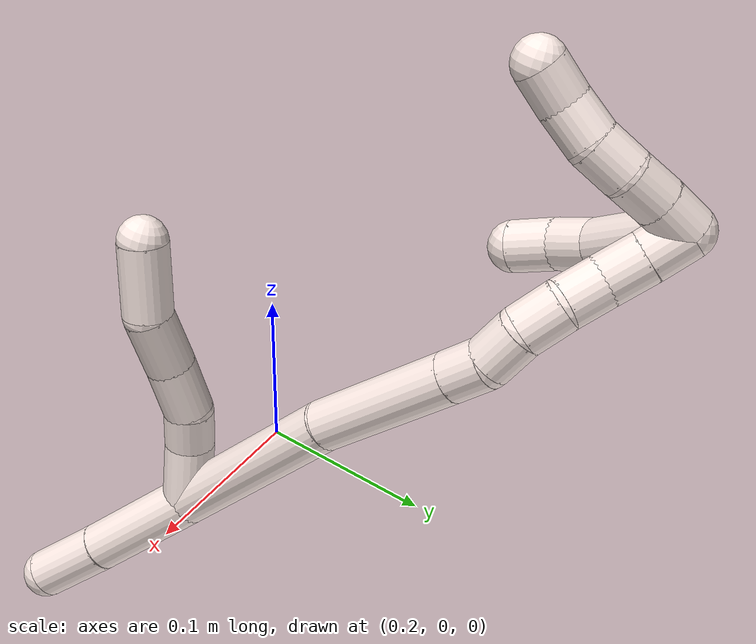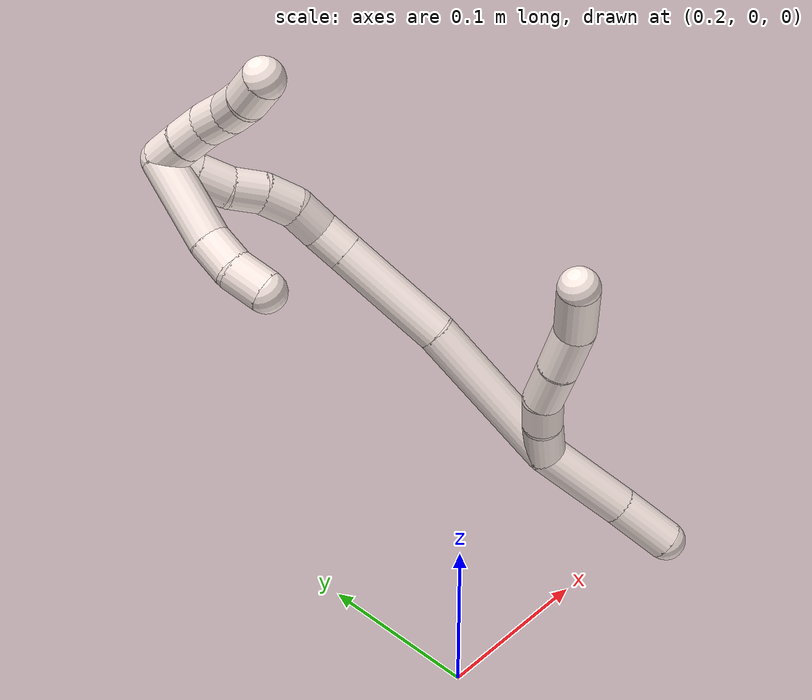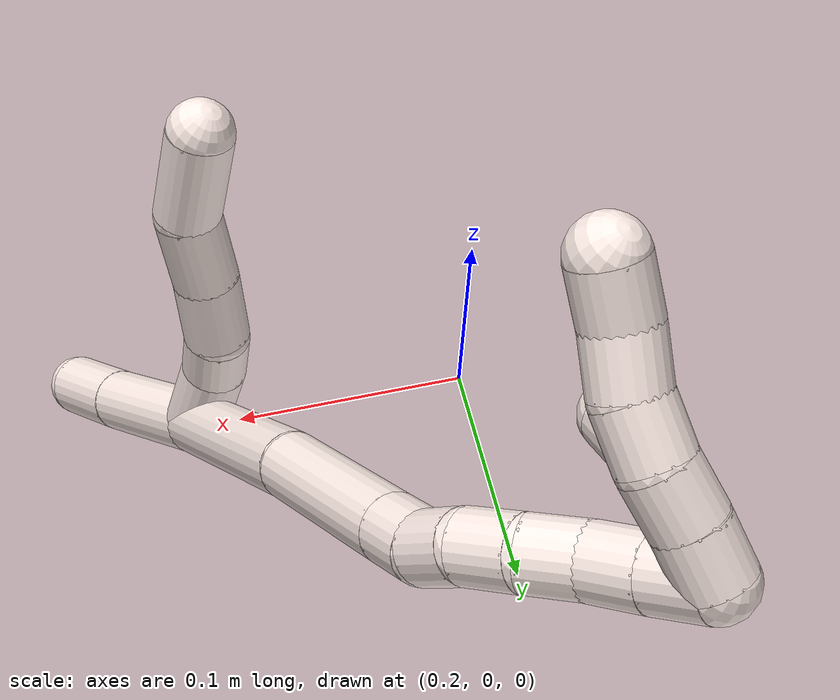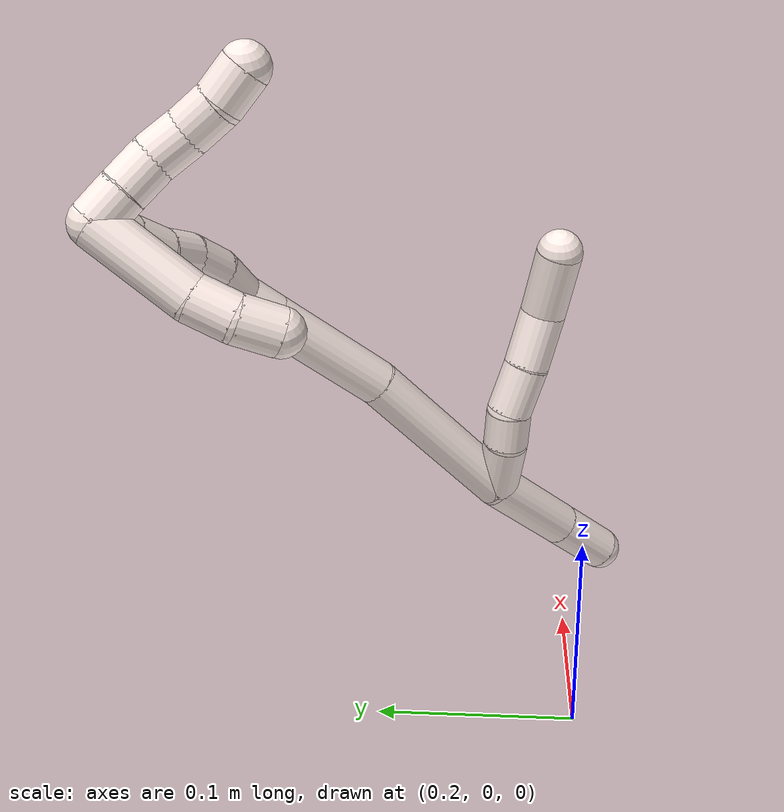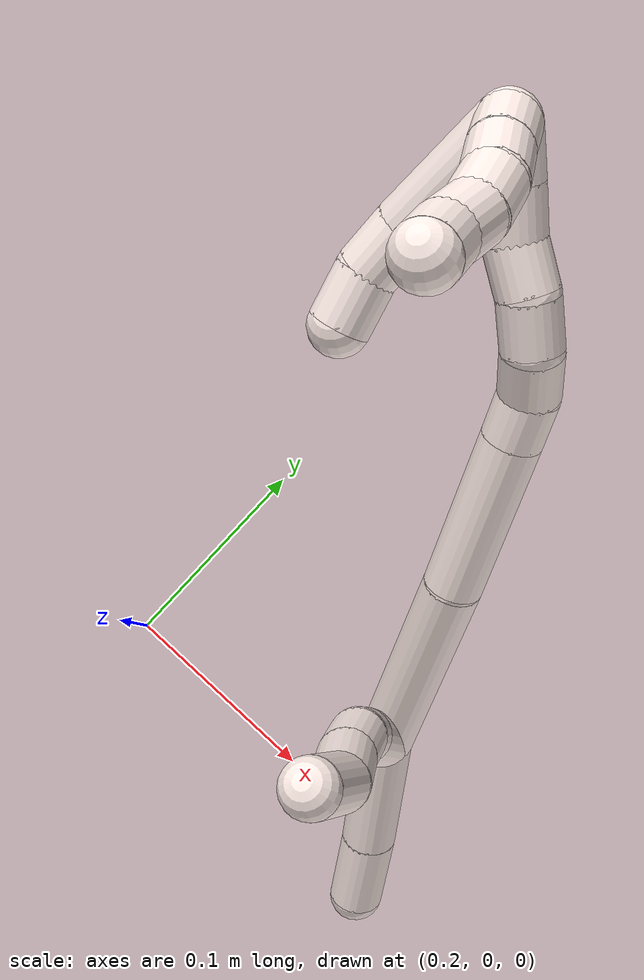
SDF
<sdf version="1.7">
 <world name="default">
  <model name="11">
   <static>0</static>
   <link name="11">
    <collision name="collision-cylinder-e_1_2_8">
     <pose>0.000746 -0.002992 0.016128 0.183396 0.045463 0.004181</pose>
     <geometry><cylinder><radius>0.0125</radius><length>0.032841</length></cylinder></geometry>
     <surface>
      <friction><ode><mu>1.16</mu><mu2>1.16</mu2><slip1>0</slip1><slip2>0</slip2></ode></friction>
      <contact><ode><kp>1e+06</kp><kd>1</kd><max_vel>0</max_vel><min_depth>0.001</min_depth></ode></contact>
     </surface>
    </collision>
    <visual name="visual-cylinder-e_1_2_8">
     <pose>0.000746 -0.002992 0.016128 0.183396 0.045463 0.004181</pose>
     <geometry><cylinder><radius>0.0125</radius><length>0.032841</length></cylinder></geometry>
     <material><ambient>1 0.933333 0.909804 1</ambient></material>
    </visual>
    <collision name="collision-cylinder-e_2_8_9">
     <pose>0.003849 -0.007566 0.042144 0.158753 0.23118 0.018471</pose>
     <geometry><cylinder><radius>0.0125</radius><length>0.020573</length></cylinder></geometry>
     <surface>
      <friction><ode><mu>1.16</mu><mu2>1.16</mu2><slip1>0</slip1><slip2>0</slip2></ode></friction>
      <contact><ode><kp>1e+06</kp><kd>1</kd><max_vel>0</max_vel><min_depth>0.001</min_depth></ode></contact>
     </surface>
    </collision>
    <visual name="visual-cylinder-e_2_8_9">
     <pose>0.003849 -0.007566 0.042144 0.158753 0.23118 0.018471</pose>
     <geometry><cylinder><radius>0.0125</radius><length>0.020573</length></cylinder></geometry>
     <material><ambient>1 0.933333 0.909804 1</ambient></material>
    </visual>
    <collision name="collision-cylinder-e_3_9_10">
     <pose>0.010691 -0.014986 0.063966 0.454858 0.325515 0.075971</pose>
     <geometry><cylinder><radius>0.0125</radius><length>0.028044</length></cylinder></geometry>
     <surface>
      <friction><ode><mu>1.16</mu><mu2>1.16</mu2><slip1>0</slip1><slip2>0</slip2></ode></friction>
      <contact><ode><kp>1e+06</kp><kd>1</kd><max_vel>0</max_vel><min_depth>0.001</min_depth></ode></contact>
     </surface>
    </collision>
    <visual name="visual-cylinder-e_3_9_10">
     <pose>0.010691 -0.014986 0.063966 0.454858 0.325515 0.075971</pose>
     <geometry><cylinder><radius>0.0125</radius><length>0.028044</length></cylinder></geometry>
     <material><ambient>1 0.933333 0.909804 1</ambient></material>
    </visual>
    <collision name="collision-cylinder-e_4_10_11">
     <pose>0.021357 -0.026813 0.088904 0.431683 0.407602 0.090566</pose>
     <geometry><cylinder><radius>0.0125</radius><length>0.03119</length></cylinder></geometry>
     <surface>
      <friction><ode><mu>1.16</mu><mu2>1.16</mu2><slip1>0</slip1><slip2>0</slip2></ode></friction>
      <contact><ode><kp>1e+06</kp><kd>1</kd><max_vel>0</max_vel><min_depth>0.001</min_depth></ode></contact>
     </surface>
    </collision>
    <visual name="visual-cylinder-e_4_10_11">
     <pose>0.021357 -0.026813 0.088904 0.431683 0.407602 0.090566</pose>
     <geometry><cylinder><radius>0.0125</radius><length>0.03119</length></cylinder></geometry>
     <material><ambient>1 0.933333 0.909804 1</ambient></material>
    </visual>
    <collision name="collision-cylinder-e_5_11_6">
     <pose>0.029481 -0.037563 0.119863 0.259135 0.104167 0.013585</pose>
     <geometry><cylinder><radius>0.0125</radius><length>0.037352</length></cylinder></geometry>
     <surface>
      <friction><ode><mu>1.16</mu><mu2>1.16</mu2><slip1>0</slip1><slip2>0</slip2></ode></friction>
      <contact><ode><kp>1e+06</kp><kd>1</kd><max_vel>0</max_vel><min_depth>0.001</min_depth></ode></contact>
     </surface>
    </collision>
    <visual name="visual-cylinder-e_5_11_6">
     <pose>0.029481 -0.037563 0.119863 0.259135 0.104167 0.013585</pose>
     <geometry><cylinder><radius>0.0125</radius><length>0.037352</length></cylinder></geometry>
     <material><ambient>1 0.933333 0.909804 1</ambient></material>
    </visual>
    <collision name="collision-cylinder-e_1_2_12">
     <pose>0.0019 -0.019315 -0.023162 2.44653 0.062913 0.173303</pose>
     <geometry><cylinder><radius>0.0125</radius><length>0.060436</length></cylinder></geometry>
     <surface>
      <friction><ode><mu>1.16</mu><mu2>1.16</mu2><slip1>0</slip1><slip2>0</slip2></ode></friction>
      <contact><ode><kp>1e+06</kp><kd>1</kd><max_vel>0</max_vel><min_depth>0.001</min_depth></ode></contact>
     </surface>
    </collision>
    <visual name="visual-cylinder-e_1_2_12">
     <pose>0.0019 -0.019315 -0.023162 2.44653 0.062913 0.173303</pose>
     <geometry><cylinder><radius>0.0125</radius><length>0.060436</length></cylinder></geometry>
     <material><ambient>1 0.933333 0.909804 1</ambient></material>
    </visual>
    <collision name="collision-cylinder-e_2_12_5">
     <pose>0.004363 -0.051613 -0.061238 2.42526 0.028464 0.076013</pose>
     <geometry><cylinder><radius>0.0125</radius><length>0.039564</length></cylinder></geometry>
     <surface>
      <friction><ode><mu>1.16</mu><mu2>1.16</mu2><slip1>0</slip1><slip2>0</slip2></ode></friction>
      <contact><ode><kp>1e+06</kp><kd>1</kd><max_vel>0</max_vel><min_depth>0.001</min_depth></ode></contact>
     </surface>
    </collision>
    <visual name="visual-cylinder-e_2_12_5">
     <pose>0.004363 -0.051613 -0.061238 2.42526 0.028464 0.076013</pose>
     <geometry><cylinder><radius>0.0125</radius><length>0.039564</length></cylinder></geometry>
     <material><ambient>1 0.933333 0.909804 1</ambient></material>
    </visual>
    <collision name="collision-cylinder-e_1_2_13">
     <pose>0.007439 0.0309 0.039749 -0.6608 0.146695 -0.050392</pose>
     <geometry><cylinder><radius>0.0125</radius><length>0.101787</length></cylinder></geometry>
     <surface>
      <friction><ode><mu>1.16</mu><mu2>1.16</mu2><slip1>0</slip1><slip2>0</slip2></ode></friction>
      <contact><ode><kp>1e+06</kp><kd>1</kd><max_vel>0</max_vel><min_depth>0.001</min_depth></ode></contact>
     </surface>
    </collision>
    <visual name="visual-cylinder-e_1_2_13">
     <pose>0.007439 0.0309 0.039749 -0.6608 0.146695 -0.050392</pose>
     <geometry><cylinder><radius>0.0125</radius><length>0.101787</length></cylinder></geometry>
     <material><ambient>1 0.933333 0.909804 1</ambient></material>
    </visual>
    <collision name="collision-cylinder-e_2_13_14">
     <pose>0.017875 0.087395 0.105349 -0.780406 0.0822 -0.033824</pose>
     <geometry><cylinder><radius>0.0125</radius><length>0.073002</length></cylinder></geometry>
     <surface>
      <friction><ode><mu>1.16</mu><mu2>1.16</mu2><slip1>0</slip1><slip2>0</slip2></ode></friction>
      <contact><ode><kp>1e+06</kp><kd>1</kd><max_vel>0</max_vel><min_depth>0.001</min_depth></ode></contact>
     </surface>
    </collision>
    <visual name="visual-cylinder-e_2_13_14">
     <pose>0.017875 0.087395 0.105349 -0.780406 0.0822 -0.033824</pose>
     <geometry><cylinder><radius>0.0125</radius><length>0.073002</length></cylinder></geometry>
     <material><ambient>1 0.933333 0.909804 1</ambient></material>
    </visual>
    <collision name="collision-cylinder-e_3_14_15">
     <pose>0.021644 0.12004 0.138402 -0.774794 0.07642 -0.031193</pose>
     <geometry><cylinder><radius>0.0125</radius><length>0.020217</length></cylinder></geometry>
     <surface>
      <friction><ode><mu>1.16</mu><mu2>1.16</mu2><slip1>0</slip1><slip2>0</slip2></ode></friction>
      <contact><ode><kp>1e+06</kp><kd>1</kd><max_vel>0</max_vel><min_depth>0.001</min_depth></ode></contact>
     </surface>
    </collision>
    <visual name="visual-cylinder-e_3_14_15">
     <pose>0.021644 0.12004 0.138402 -0.774794 0.07642 -0.031193</pose>
     <geometry><cylinder><radius>0.0125</radius><length>0.020217</length></cylinder></geometry>
     <material><ambient>1 0.933333 0.909804 1</ambient></material>
    </visual>
    <collision name="collision-cylinder-e_4_15_16">
     <pose>0.021753 0.131773 0.15509 -0.45847 -0.062566 0.014603</pose>
     <geometry><cylinder><radius>0.0125</radius><length>0.021198</length></cylinder></geometry>
     <surface>
      <friction><ode><mu>1.16</mu><mu2>1.16</mu2><slip1>0</slip1><slip2>0</slip2></ode></friction>
      <contact><ode><kp>1e+06</kp><kd>1</kd><max_vel>0</max_vel><min_depth>0.001</min_depth></ode></contact>
     </surface>
    </collision>
    <visual name="visual-cylinder-e_4_15_16">
     <pose>0.021753 0.131773 0.15509 -0.45847 -0.062566 0.014603</pose>
     <geometry><cylinder><radius>0.0125</radius><length>0.021198</length></cylinder></geometry>
     <material><ambient>1 0.933333 0.909804 1</ambient></material>
    </visual>
    <collision name="collision-cylinder-e_5_16_17">
     <pose>0.017735 0.142606 0.172822 -0.640943 -0.315274 0.105421</pose>
     <geometry><cylinder><radius>0.0125</radius><length>0.021643</length></cylinder></geometry>
     <surface>
      <friction><ode><mu>1.16</mu><mu2>1.16</mu2><slip1>0</slip1><slip2>0</slip2></ode></friction>
      <contact><ode><kp>1e+06</kp><kd>1</kd><max_vel>0</max_vel><min_depth>0.001</min_depth></ode></contact>
     </surface>
    </collision>
    <visual name="visual-cylinder-e_5_16_17">
     <pose>0.017735 0.142606 0.172822 -0.640943 -0.315274 0.105421</pose>
     <geometry><cylinder><radius>0.0125</radius><length>0.021643</length></cylinder></geometry>
     <material><ambient>1 0.933333 0.909804 1</ambient></material>
    </visual>
    <collision name="collision-cylinder-e_6_17_18">
     <pose>0.008976 0.154487 0.187469 -0.730068 -0.561547 0.219538</pose>
     <geometry><cylinder><radius>0.0125</radius><length>0.020296</length></cylinder></geometry>
     <surface>
      <friction><ode><mu>1.16</mu><mu2>1.16</mu2><slip1>0</slip1><slip2>0</slip2></ode></friction>
      <contact><ode><kp>1e+06</kp><kd>1</kd><max_vel>0</max_vel><min_depth>0.001</min_depth></ode></contact>
     </surface>
    </collision>
    <visual name="visual-cylinder-e_6_17_18">
     <pose>0.008976 0.154487 0.187469 -0.730068 -0.561547 0.219538</pose>
     <geometry><cylinder><radius>0.0125</radius><length>0.020296</length></cylinder></geometry>
     <material><ambient>1 0.933333 0.909804 1</ambient></material>
    </visual>
    <collision name="collision-cylinder-e_7_18_19">
     <pose>0.000278 0.166804 0.201616 -0.704756 -0.313213 0.115997</pose>
     <geometry><cylinder><radius>0.0125</radius><length>0.02138</length></cylinder></geometry>
     <surface>
      <friction><ode><mu>1.16</mu><mu2>1.16</mu2><slip1>0</slip1><slip2>0</slip2></ode></friction>
      <contact><ode><kp>1e+06</kp><kd>1</kd><max_vel>0</max_vel><min_depth>0.001</min_depth></ode></contact>
     </surface>
    </collision>
    <visual name="visual-cylinder-e_7_18_19">
     <pose>0.000278 0.166804 0.201616 -0.704756 -0.313213 0.115997</pose>
     <geometry><cylinder><radius>0.0125</radius><length>0.02138</length></cylinder></geometry>
     <material><ambient>1 0.933333 0.909804 1</ambient></material>
    </visual>
    <collision name="collision-cylinder-e_8_19_1">
     <pose>-0.006116 0.179391 0.21706 -0.66205 -0.307632 0.106465</pose>
     <geometry><cylinder><radius>0.0125</radius><length>0.020477</length></cylinder></geometry>
     <surface>
      <friction><ode><mu>1.16</mu><mu2>1.16</mu2><slip1>0</slip1><slip2>0</slip2></ode></friction>
      <contact><ode><kp>1e+06</kp><kd>1</kd><max_vel>0</max_vel><min_depth>0.001</min_depth></ode></contact>
     </surface>
    </collision>
    <visual name="visual-cylinder-e_8_19_1">
     <pose>-0.006116 0.179391 0.21706 -0.66205 -0.307632 0.106465</pose>
     <geometry><cylinder><radius>0.0125</radius><length>0.020477</length></cylinder></geometry>
     <material><ambient>1 0.933333 0.909804 1</ambient></material>
    </visual>
    <collision name="collision-cylinder-e_1_1_20">
     <pose>-0.005195 0.177672 0.229684 1.00251 0.413833 0.229039</pose>
     <geometry><cylinder><radius>0.0125</radius><length>0.02</length></cylinder></geometry>
     <surface>
      <friction><ode><mu>1.16</mu><mu2>1.16</mu2><slip1>0</slip1><slip2>0</slip2></ode></friction>
      <contact><ode><kp>1e+06</kp><kd>1</kd><max_vel>0</max_vel><min_depth>0.001</min_depth></ode></contact>
     </surface>
    </collision>
    <visual name="visual-cylinder-e_1_1_20">
     <pose>-0.005195 0.177672 0.229684 1.00251 0.413833 0.229039</pose>
     <geometry><cylinder><radius>0.0125</radius><length>0.02</length></cylinder></geometry>
     <material><ambient>1 0.933333 0.909804 1</ambient></material>
    </visual>
    <collision name="collision-cylinder-e_2_20_21">
     <pose>0.00323 0.162167 0.239077 1.05014 0.455967 0.267222</pose>
     <geometry><cylinder><radius>0.0125</radius><length>0.02</length></cylinder></geometry>
     <surface>
      <friction><ode><mu>1.16</mu><mu2>1.16</mu2><slip1>0</slip1><slip2>0</slip2></ode></friction>
      <contact><ode><kp>1e+06</kp><kd>1</kd><max_vel>0</max_vel><min_depth>0.001</min_depth></ode></contact>
     </surface>
    </collision>
    <visual name="visual-cylinder-e_2_20_21">
     <pose>0.00323 0.162167 0.239077 1.05014 0.455967 0.267222</pose>
     <geometry><cylinder><radius>0.0125</radius><length>0.02</length></cylinder></geometry>
     <material><ambient>1 0.933333 0.909804 1</ambient></material>
    </visual>
    <collision name="collision-cylinder-e_3_21_22">
     <pose>0.010101 0.145724 0.247904 1.10405 0.249392 0.154095</pose>
     <geometry><cylinder><radius>0.0125</radius><length>0.02</length></cylinder></geometry>
     <surface>
      <friction><ode><mu>1.16</mu><mu2>1.16</mu2><slip1>0</slip1><slip2>0</slip2></ode></friction>
      <contact><ode><kp>1e+06</kp><kd>1</kd><max_vel>0</max_vel><min_depth>0.001</min_depth></ode></contact>
     </surface>
    </collision>
    <visual name="visual-cylinder-e_3_21_22">
     <pose>0.010101 0.145724 0.247904 1.10405 0.249392 0.154095</pose>
     <geometry><cylinder><radius>0.0125</radius><length>0.02</length></cylinder></geometry>
     <material><ambient>1 0.933333 0.909804 1</ambient></material>
    </visual>
    <collision name="collision-cylinder-e_4_22_23">
     <pose>0.013223 0.12894 0.258051 0.952294 0.065433 0.033754</pose>
     <geometry><cylinder><radius>0.0125</radius><length>0.02</length></cylinder></geometry>
     <surface>
      <friction><ode><mu>1.16</mu><mu2>1.16</mu2><slip1>0</slip1><slip2>0</slip2></ode></friction>
      <contact><ode><kp>1e+06</kp><kd>1</kd><max_vel>0</max_vel><min_depth>0.001</min_depth></ode></contact>
     </surface>
    </collision>
    <visual name="visual-cylinder-e_4_22_23">
     <pose>0.013223 0.12894 0.258051 0.952294 0.065433 0.033754</pose>
     <geometry><cylinder><radius>0.0125</radius><length>0.02</length></cylinder></geometry>
     <material><ambient>1 0.933333 0.909804 1</ambient></material>
    </visual>
    <collision name="collision-cylinder-e_5_23_4">
     <pose>0.016439 0.113733 0.270421 0.821455 0.25911 0.113355</pose>
     <geometry><cylinder><radius>0.0125</radius><length>0.02</length></cylinder></geometry>
     <surface>
      <friction><ode><mu>1.16</mu><mu2>1.16</mu2><slip1>0</slip1><slip2>0</slip2></ode></friction>
      <contact><ode><kp>1e+06</kp><kd>1</kd><max_vel>0</max_vel><min_depth>0.001</min_depth></ode></contact>
     </surface>
    </collision>
    <visual name="visual-cylinder-e_5_23_4">
     <pose>0.016439 0.113733 0.270421 0.821455 0.25911 0.113355</pose>
     <geometry><cylinder><radius>0.0125</radius><length>0.02</length></cylinder></geometry>
     <material><ambient>1 0.933333 0.909804 1</ambient></material>
    </visual>
    <collision name="collision-cylinder-e_1_1_24">
     <pose>-0.02232 0.166096 0.209873 2.22786 -0.493414 -0.946931</pose>
     <geometry><cylinder><radius>0.0125</radius><length>0.055335</length></cylinder></geometry>
     <surface>
      <friction><ode><mu>1.16</mu><mu2>1.16</mu2><slip1>0</slip1><slip2>0</slip2></ode></friction>
      <contact><ode><kp>1e+06</kp><kd>1</kd><max_vel>0</max_vel><min_depth>0.001</min_depth></ode></contact>
     </surface>
    </collision>
    <visual name="visual-cylinder-e_1_1_24">
     <pose>-0.02232 0.166096 0.209873 2.22786 -0.493414 -0.946931</pose>
     <geometry><cylinder><radius>0.0125</radius><length>0.055335</length></cylinder></geometry>
     <material><ambient>1 0.933333 0.909804 1</ambient></material>
    </visual>
    <collision name="collision-cylinder-e_2_24_25">
     <pose>-0.03941 0.137621 0.190282 2.04453 -0.3686 -0.592176</pose>
     <geometry><cylinder><radius>0.0125</radius><length>0.022121</length></cylinder></geometry>
     <surface>
      <friction><ode><mu>1.16</mu><mu2>1.16</mu2><slip1>0</slip1><slip2>0</slip2></ode></friction>
      <contact><ode><kp>1e+06</kp><kd>1</kd><max_vel>0</max_vel><min_depth>0.001</min_depth></ode></contact>
     </surface>
    </collision>
    <visual name="visual-cylinder-e_2_24_25">
     <pose>-0.03941 0.137621 0.190282 2.04453 -0.3686 -0.592176</pose>
     <geometry><cylinder><radius>0.0125</radius><length>0.022121</length></cylinder></geometry>
     <material><ambient>1 0.933333 0.909804 1</ambient></material>
    </visual>
    <collision name="collision-cylinder-e_3_25_3">
     <pose>-0.044636 0.118453 0.180496 2.04129 -0.11029 -0.179525</pose>
     <geometry><cylinder><radius>0.0125</radius><length>0.022544</length></cylinder></geometry>
     <surface>
      <friction><ode><mu>1.16</mu><mu2>1.16</mu2><slip1>0</slip1><slip2>0</slip2></ode></friction>
      <contact><ode><kp>1e+06</kp><kd>1</kd><max_vel>0</max_vel><min_depth>0.001</min_depth></ode></contact>
     </surface>
    </collision>
    <visual name="visual-cylinder-e_3_25_3">
     <pose>-0.044636 0.118453 0.180496 2.04129 -0.11029 -0.179525</pose>
     <geometry><cylinder><radius>0.0125</radius><length>0.022544</length></cylinder></geometry>
     <material><ambient>1 0.933333 0.909804 1</ambient></material>
    </visual>
    <collision name="collision-sphere-3">
     <pose>-0.045876 0.108467 0.175417 0 -0 0</pose>
     <geometry><sphere><radius>0.0125</radius></sphere></geometry>
     <surface>
      <friction><ode><mu>1.16</mu><mu2>1.16</mu2><slip1>0</slip1><slip2>0</slip2></ode></friction>
      <contact><ode><kp>1e+06</kp><kd>1</kd><max_vel>0</max_vel><min_depth>0.001</min_depth></ode></contact>
     </surface>
    </collision>
    <visual name="visual-sphere-3">
     <pose>-0.045876 0.108467 0.175417 0 -0 0</pose>
     <geometry><sphere><radius>0.0125</radius></sphere></geometry>
     <material><ambient>1 0.933333 0.909804 1</ambient></material>
    </visual>
    <collision name="collision-sphere-25">
     <pose>-0.043395 0.128439 0.185575 0 -0 0</pose>
     <geometry><sphere><radius>0.0125</radius></sphere></geometry>
     <surface>
      <friction><ode><mu>1.16</mu><mu2>1.16</mu2><slip1>0</slip1><slip2>0</slip2></ode></friction>
      <contact><ode><kp>1e+06</kp><kd>1</kd><max_vel>0</max_vel><min_depth>0.001</min_depth></ode></contact>
     </surface>
    </collision>
    <visual name="visual-sphere-25">
     <pose>-0.043395 0.128439 0.185575 0 -0 0</pose>
     <geometry><sphere><radius>0.0125</radius></sphere></geometry>
     <material><ambient>1 0.933333 0.909804 1</ambient></material>
    </visual>
    <collision name="collision-sphere-24">
     <pose>-0.035425 0.146802 0.194989 0 -0 0</pose>
     <geometry><sphere><radius>0.0125</radius></sphere></geometry>
     <surface>
      <friction><ode><mu>1.16</mu><mu2>1.16</mu2><slip1>0</slip1><slip2>0</slip2></ode></friction>
      <contact><ode><kp>1e+06</kp><kd>1</kd><max_vel>0</max_vel><min_depth>0.001</min_depth></ode></contact>
     </surface>
    </collision>
    <visual name="visual-sphere-24">
     <pose>-0.035425 0.146802 0.194989 0 -0 0</pose>
     <geometry><sphere><radius>0.0125</radius></sphere></geometry>
     <material><ambient>1 0.933333 0.909804 1</ambient></material>
    </visual>
    <collision name="collision-sphere-4">
     <pose>0.019001 0.106656 0.277005 0 -0 0</pose>
     <geometry><sphere><radius>0.0125</radius></sphere></geometry>
     <surface>
      <friction><ode><mu>1.16</mu><mu2>1.16</mu2><slip1>0</slip1><slip2>0</slip2></ode></friction>
      <contact><ode><kp>1e+06</kp><kd>1</kd><max_vel>0</max_vel><min_depth>0.001</min_depth></ode></contact>
     </surface>
    </collision>
    <visual name="visual-sphere-4">
     <pose>0.019001 0.106656 0.277005 0 -0 0</pose>
     <geometry><sphere><radius>0.0125</radius></sphere></geometry>
     <material><ambient>1 0.933333 0.909804 1</ambient></material>
    </visual>
    <collision name="collision-sphere-23">
     <pose>0.013877 0.12081 0.263836 0 -0 0</pose>
     <geometry><sphere><radius>0.0125</radius></sphere></geometry>
     <surface>
      <friction><ode><mu>1.16</mu><mu2>1.16</mu2><slip1>0</slip1><slip2>0</slip2></ode></friction>
      <contact><ode><kp>1e+06</kp><kd>1</kd><max_vel>0</max_vel><min_depth>0.001</min_depth></ode></contact>
     </surface>
    </collision>
    <visual name="visual-sphere-23">
     <pose>0.013877 0.12081 0.263836 0 -0 0</pose>
     <geometry><sphere><radius>0.0125</radius></sphere></geometry>
     <material><ambient>1 0.933333 0.909804 1</ambient></material>
    </visual>
    <collision name="collision-sphere-22">
     <pose>0.012569 0.13707 0.252265 0 -0 0</pose>
     <geometry><sphere><radius>0.0125</radius></sphere></geometry>
     <surface>
      <friction><ode><mu>1.16</mu><mu2>1.16</mu2><slip1>0</slip1><slip2>0</slip2></ode></friction>
      <contact><ode><kp>1e+06</kp><kd>1</kd><max_vel>0</max_vel><min_depth>0.001</min_depth></ode></contact>
     </surface>
    </collision>
    <visual name="visual-sphere-22">
     <pose>0.012569 0.13707 0.252265 0 -0 0</pose>
     <geometry><sphere><radius>0.0125</radius></sphere></geometry>
     <material><ambient>1 0.933333 0.909804 1</ambient></material>
    </visual>
    <collision name="collision-sphere-21">
     <pose>0.007633 0.154378 0.243544 0 -0 0</pose>
     <geometry><sphere><radius>0.0125</radius></sphere></geometry>
     <surface>
      <friction><ode><mu>1.16</mu><mu2>1.16</mu2><slip1>0</slip1><slip2>0</slip2></ode></friction>
      <contact><ode><kp>1e+06</kp><kd>1</kd><max_vel>0</max_vel><min_depth>0.001</min_depth></ode></contact>
     </surface>
    </collision>
    <visual name="visual-sphere-21">
     <pose>0.007633 0.154378 0.243544 0 -0 0</pose>
     <geometry><sphere><radius>0.0125</radius></sphere></geometry>
     <material><ambient>1 0.933333 0.909804 1</ambient></material>
    </visual>
    <collision name="collision-sphere-20">
     <pose>-0.001174 0.169956 0.234611 0 -0 0</pose>
     <geometry><sphere><radius>0.0125</radius></sphere></geometry>
     <surface>
      <friction><ode><mu>1.16</mu><mu2>1.16</mu2><slip1>0</slip1><slip2>0</slip2></ode></friction>
      <contact><ode><kp>1e+06</kp><kd>1</kd><max_vel>0</max_vel><min_depth>0.001</min_depth></ode></contact>
     </surface>
    </collision>
    <visual name="visual-sphere-20">
     <pose>-0.001174 0.169956 0.234611 0 -0 0</pose>
     <geometry><sphere><radius>0.0125</radius></sphere></geometry>
     <material><ambient>1 0.933333 0.909804 1</ambient></material>
    </visual>
    <collision name="collision-sphere-6">
     <pose>0.031423 -0.042323 0.137817 0 -0 0</pose>
     <geometry><sphere><radius>0.0125</radius></sphere></geometry>
     <surface>
      <friction><ode><mu>1.16</mu><mu2>1.16</mu2><slip1>0</slip1><slip2>0</slip2></ode></friction>
      <contact><ode><kp>1e+06</kp><kd>1</kd><max_vel>0</max_vel><min_depth>0.001</min_depth></ode></contact>
     </surface>
    </collision>
    <visual name="visual-sphere-6">
     <pose>0.031423 -0.042323 0.137817 0 -0 0</pose>
     <geometry><sphere><radius>0.0125</radius></sphere></geometry>
     <material><ambient>1 0.933333 0.909804 1</ambient></material>
    </visual>
    <collision name="collision-sphere-11">
     <pose>0.027539 -0.032803 0.101908 0 -0 0</pose>
     <geometry><sphere><radius>0.0125</radius></sphere></geometry>
     <surface>
      <friction><ode><mu>1.16</mu><mu2>1.16</mu2><slip1>0</slip1><slip2>0</slip2></ode></friction>
      <contact><ode><kp>1e+06</kp><kd>1</kd><max_vel>0</max_vel><min_depth>0.001</min_depth></ode></contact>
     </surface>
    </collision>
    <visual name="visual-sphere-11">
     <pose>0.027539 -0.032803 0.101908 0 -0 0</pose>
     <geometry><sphere><radius>0.0125</radius></sphere></geometry>
     <material><ambient>1 0.933333 0.909804 1</ambient></material>
    </visual>
    <collision name="collision-sphere-10">
     <pose>0.015175 -0.020823 0.075901 0 -0 0</pose>
     <geometry><sphere><radius>0.0125</radius></sphere></geometry>
     <surface>
      <friction><ode><mu>1.16</mu><mu2>1.16</mu2><slip1>0</slip1><slip2>0</slip2></ode></friction>
      <contact><ode><kp>1e+06</kp><kd>1</kd><max_vel>0</max_vel><min_depth>0.001</min_depth></ode></contact>
     </surface>
    </collision>
    <visual name="visual-sphere-10">
     <pose>0.015175 -0.020823 0.075901 0 -0 0</pose>
     <geometry><sphere><radius>0.0125</radius></sphere></geometry>
     <material><ambient>1 0.933333 0.909804 1</ambient></material>
    </visual>
    <collision name="collision-sphere-9">
     <pose>0.006206 -0.009149 0.052031 0 -0 0</pose>
     <geometry><sphere><radius>0.0125</radius></sphere></geometry>
     <surface>
      <friction><ode><mu>1.16</mu><mu2>1.16</mu2><slip1>0</slip1><slip2>0</slip2></ode></friction>
      <contact><ode><kp>1e+06</kp><kd>1</kd><max_vel>0</max_vel><min_depth>0.001</min_depth></ode></contact>
     </surface>
    </collision>
    <visual name="visual-sphere-9">
     <pose>0.006206 -0.009149 0.052031 0 -0 0</pose>
     <geometry><sphere><radius>0.0125</radius></sphere></geometry>
     <material><ambient>1 0.933333 0.909804 1</ambient></material>
    </visual>
    <collision name="collision-sphere-2">
     <geometry><sphere><radius>0.0125</radius></sphere></geometry>
     <surface>
      <friction><ode><mu>1.16</mu><mu2>1.16</mu2><slip1>0</slip1><slip2>0</slip2></ode></friction>
      <contact><ode><kp>1e+06</kp><kd>1</kd><max_vel>0</max_vel><min_depth>0.001</min_depth></ode></contact>
     </surface>
    </collision>
    <visual name="visual-sphere-2">
     <geometry><sphere><radius>0.0125</radius></sphere></geometry>
     <material><ambient>1 0.933333 0.909804 1</ambient></material>
    </visual>
    <collision name="collision-sphere-19">
     <pose>-0.003016 0.173392 0.209363 0 -0 0</pose>
     <geometry><sphere><radius>0.0125</radius></sphere></geometry>
     <surface>
      <friction><ode><mu>1.16</mu><mu2>1.16</mu2><slip1>0</slip1><slip2>0</slip2></ode></friction>
      <contact><ode><kp>1e+06</kp><kd>1</kd><max_vel>0</max_vel><min_depth>0.001</min_depth></ode></contact>
     </surface>
    </collision>
    <visual name="visual-sphere-19">
     <pose>-0.003016 0.173392 0.209363 0 -0 0</pose>
     <geometry><sphere><radius>0.0125</radius></sphere></geometry>
     <material><ambient>1 0.933333 0.909804 1</ambient></material>
    </visual>
    <collision name="collision-sphere-8">
     <pose>0.001493 -0.005983 0.032257 0 -0 0</pose>
     <geometry><sphere><radius>0.0125</radius></sphere></geometry>
     <surface>
      <friction><ode><mu>1.16</mu><mu2>1.16</mu2><slip1>0</slip1><slip2>0</slip2></ode></friction>
      <contact><ode><kp>1e+06</kp><kd>1</kd><max_vel>0</max_vel><min_depth>0.001</min_depth></ode></contact>
     </surface>
    </collision>
    <visual name="visual-sphere-8">
     <pose>0.001493 -0.005983 0.032257 0 -0 0</pose>
     <geometry><sphere><radius>0.0125</radius></sphere></geometry>
     <material><ambient>1 0.933333 0.909804 1</ambient></material>
    </visual>
    <collision name="collision-sphere-12">
     <pose>0.0038 -0.038629 -0.046324 0 -0 0</pose>
     <geometry><sphere><radius>0.0125</radius></sphere></geometry>
     <surface>
      <friction><ode><mu>1.16</mu><mu2>1.16</mu2><slip1>0</slip1><slip2>0</slip2></ode></friction>
      <contact><ode><kp>1e+06</kp><kd>1</kd><max_vel>0</max_vel><min_depth>0.001</min_depth></ode></contact>
     </surface>
    </collision>
    <visual name="visual-sphere-12">
     <pose>0.0038 -0.038629 -0.046324 0 -0 0</pose>
     <geometry><sphere><radius>0.0125</radius></sphere></geometry>
     <material><ambient>1 0.933333 0.909804 1</ambient></material>
    </visual>
    <collision name="collision-sphere-5">
     <pose>0.004926 -0.064597 -0.076152 0 -0 0</pose>
     <geometry><sphere><radius>0.0125</radius></sphere></geometry>
     <surface>
      <friction><ode><mu>1.16</mu><mu2>1.16</mu2><slip1>0</slip1><slip2>0</slip2></ode></friction>
      <contact><ode><kp>1e+06</kp><kd>1</kd><max_vel>0</max_vel><min_depth>0.001</min_depth></ode></contact>
     </surface>
    </collision>
    <visual name="visual-sphere-5">
     <pose>0.004926 -0.064597 -0.076152 0 -0 0</pose>
     <geometry><sphere><radius>0.0125</radius></sphere></geometry>
     <material><ambient>1 0.933333 0.909804 1</ambient></material>
    </visual>
    <collision name="collision-sphere-13">
     <pose>0.014878 0.061801 0.079498 0 -0 0</pose>
     <geometry><sphere><radius>0.0125</radius></sphere></geometry>
     <surface>
      <friction><ode><mu>1.16</mu><mu2>1.16</mu2><slip1>0</slip1><slip2>0</slip2></ode></friction>
      <contact><ode><kp>1e+06</kp><kd>1</kd><max_vel>0</max_vel><min_depth>0.001</min_depth></ode></contact>
     </surface>
    </collision>
    <visual name="visual-sphere-13">
     <pose>0.014878 0.061801 0.079498 0 -0 0</pose>
     <geometry><sphere><radius>0.0125</radius></sphere></geometry>
     <material><ambient>1 0.933333 0.909804 1</ambient></material>
    </visual>
    <collision name="collision-sphere-14">
     <pose>0.020872 0.112989 0.1312 0 -0 0</pose>
     <geometry><sphere><radius>0.0125</radius></sphere></geometry>
     <surface>
      <friction><ode><mu>1.16</mu><mu2>1.16</mu2><slip1>0</slip1><slip2>0</slip2></ode></friction>
      <contact><ode><kp>1e+06</kp><kd>1</kd><max_vel>0</max_vel><min_depth>0.001</min_depth></ode></contact>
     </surface>
    </collision>
    <visual name="visual-sphere-14">
     <pose>0.020872 0.112989 0.1312 0 -0 0</pose>
     <geometry><sphere><radius>0.0125</radius></sphere></geometry>
     <material><ambient>1 0.933333 0.909804 1</ambient></material>
    </visual>
    <collision name="collision-sphere-15">
     <pose>0.022416 0.127091 0.145605 0 -0 0</pose>
     <geometry><sphere><radius>0.0125</radius></sphere></geometry>
     <surface>
      <friction><ode><mu>1.16</mu><mu2>1.16</mu2><slip1>0</slip1><slip2>0</slip2></ode></friction>
      <contact><ode><kp>1e+06</kp><kd>1</kd><max_vel>0</max_vel><min_depth>0.001</min_depth></ode></contact>
     </surface>
    </collision>
    <visual name="visual-sphere-15">
     <pose>0.022416 0.127091 0.145605 0 -0 0</pose>
     <geometry><sphere><radius>0.0125</radius></sphere></geometry>
     <material><ambient>1 0.933333 0.909804 1</ambient></material>
    </visual>
    <collision name="collision-sphere-16">
     <pose>0.02109 0.136455 0.164576 0 -0 0</pose>
     <geometry><sphere><radius>0.0125</radius></sphere></geometry>
     <surface>
      <friction><ode><mu>1.16</mu><mu2>1.16</mu2><slip1>0</slip1><slip2>0</slip2></ode></friction>
      <contact><ode><kp>1e+06</kp><kd>1</kd><max_vel>0</max_vel><min_depth>0.001</min_depth></ode></contact>
     </surface>
    </collision>
    <visual name="visual-sphere-16">
     <pose>0.02109 0.136455 0.164576 0 -0 0</pose>
     <geometry><sphere><radius>0.0125</radius></sphere></geometry>
     <material><ambient>1 0.933333 0.909804 1</ambient></material>
    </visual>
    <collision name="collision-sphere-17">
     <pose>0.014379 0.148758 0.181069 0 -0 0</pose>
     <geometry><sphere><radius>0.0125</radius></sphere></geometry>
     <surface>
      <friction><ode><mu>1.16</mu><mu2>1.16</mu2><slip1>0</slip1><slip2>0</slip2></ode></friction>
      <contact><ode><kp>1e+06</kp><kd>1</kd><max_vel>0</max_vel><min_depth>0.001</min_depth></ode></contact>
     </surface>
    </collision>
    <visual name="visual-sphere-17">
     <pose>0.014379 0.148758 0.181069 0 -0 0</pose>
     <geometry><sphere><radius>0.0125</radius></sphere></geometry>
     <material><ambient>1 0.933333 0.909804 1</ambient></material>
    </visual>
    <collision name="collision-sphere-18">
     <pose>0.003572 0.160215 0.193869 0 -0 0</pose>
     <geometry><sphere><radius>0.0125</radius></sphere></geometry>
     <surface>
      <friction><ode><mu>1.16</mu><mu2>1.16</mu2><slip1>0</slip1><slip2>0</slip2></ode></friction>
      <contact><ode><kp>1e+06</kp><kd>1</kd><max_vel>0</max_vel><min_depth>0.001</min_depth></ode></contact>
     </surface>
    </collision>
    <visual name="visual-sphere-18">
     <pose>0.003572 0.160215 0.193869 0 -0 0</pose>
     <geometry><sphere><radius>0.0125</radius></sphere></geometry>
     <material><ambient>1 0.933333 0.909804 1</ambient></material>
    </visual>
    <collision name="collision-sphere-1">
     <pose>-0.009216 0.185389 0.224756 0 -0 0</pose>
     <geometry><sphere><radius>0.0125</radius></sphere></geometry>
     <surface>
      <friction><ode><mu>1.16</mu><mu2>1.16</mu2><slip1>0</slip1><slip2>0</slip2></ode></friction>
      <contact><ode><kp>1e+06</kp><kd>1</kd><max_vel>0</max_vel><min_depth>0.001</min_depth></ode></contact>
     </surface>
    </collision>
    <visual name="visual-sphere-1">
     <pose>-0.009216 0.185389 0.224756 0 -0 0</pose>
     <geometry><sphere><radius>0.0125</radius></sphere></geometry>
     <material><ambient>1 0.933333 0.909804 1</ambient></material>
    </visual>
    <inertial>
     <pose>0.004678 0.068739 0.114047 0 -0 0</pose>
     <mass>0.75</mass>
     <inertia>
      <ixx>0.000187</ixx>
      <ixy>0</ixy>
      <ixz>0</ixz>
      <iyy>8.6e-05</iyy>
      <iyz>0</iyz>
      <izz>-3.3e-05</izz>
     </inertia>
    </inertial>
   </link>
   <pose>0.322489 0.040236 0.074081 -0.123578 -0.364422 0.215832</pose>
  </model>
 </world>
</sdf>
